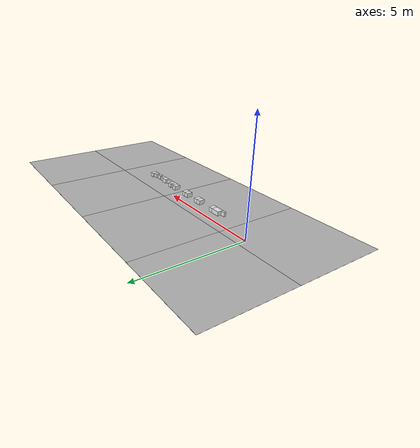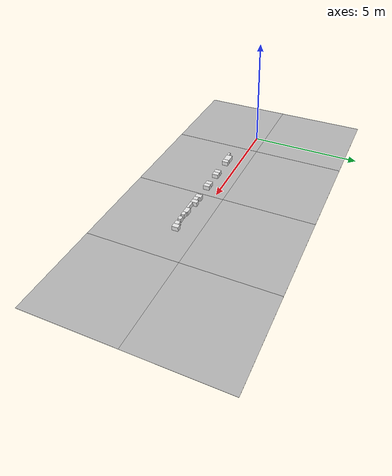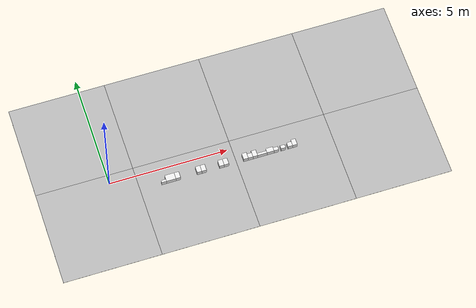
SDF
<sdf version='1.6'><world name='default'>
    <light name='sun_light' type='directional'>
      <pose frame=''>0 0 10 0 -0 0</pose>
      <diffuse>0.5 0.5 0.5 1</diffuse>
      <specular>0.1 0.1 0.1 1</specular>
      <direction>0.1 0.1 -0.9</direction>
      <attenuation>
        <range>20</range>
        <constant>0.5</constant>
        <linear>0.01</linear>
        <quadratic>0.001</quadratic>
      </attenuation>
      <cast_shadows>1</cast_shadows>
    </light>

    <model name='Tile/0-0'>
      <static>1</static>
      <link name='link'>
        <collision name='collision'>
          <geometry>
            <plane>
              <normal>0 0 1</normal>
              <size>4.096 4.096</size>
            </plane>
          </geometry>
          <surface>
            <friction>
              <ode>
                <mu>100</mu>
                <mu2>50</mu2>
              </ode>
              <torsional>
                <ode/>
              </torsional>
            </friction>
            <contact>
              <ode/>
            </contact>
            <bounce/>
          </surface>
          <max_contacts>10</max_contacts>
        </collision>
        <visual name='visual'>
          <cast_shadows>0</cast_shadows>
          <geometry>
            <plane>
              <normal>0 0 1</normal>
              <size>4.096 4.096</size>
            </plane>
          </geometry>
          <material>
            <script>
              <uri>file://materials/scripts</uri>
              <uri>file://materials/textures</uri>
              <name>Tile/aa44efc093d15b0d016b671cb8dad8b9b5925cd42bc6b331ef31decf4ba6863e</name>
            </script>
          </material>
        </visual>
        <self_collide>0</self_collide>
        <enable_wind>0</enable_wind>
        <kinematic>0</kinematic>
      </link>
      <pose frame=''>-0.952 -1.6520000000000001 0 0 -0 0</pose>
    </model>

    <model name='Tile/0-1'>
      <static>1</static>
      <link name='link'>
        <collision name='collision'>
          <geometry>
            <plane>
              <normal>0 0 1</normal>
              <size>4.096 4.096</size>
            </plane>
          </geometry>
          <surface>
            <friction>
              <ode>
                <mu>100</mu>
                <mu2>50</mu2>
              </ode>
              <torsional>
                <ode/>
              </torsional>
            </friction>
            <contact>
              <ode/>
            </contact>
            <bounce/>
          </surface>
          <max_contacts>10</max_contacts>
        </collision>
        <visual name='visual'>
          <cast_shadows>0</cast_shadows>
          <geometry>
            <plane>
              <normal>0 0 1</normal>
              <size>4.096 4.096</size>
            </plane>
          </geometry>
          <material>
            <script>
              <uri>file://materials/scripts</uri>
              <uri>file://materials/textures</uri>
              <name>Tile/6681b896b1587d54cb69aadeb5fb7247b4d6d500490292053e67105ac88ca889</name>
            </script>
          </material>
        </visual>
        <self_collide>0</self_collide>
        <enable_wind>0</enable_wind>
        <kinematic>0</kinematic>
      </link>
      <pose frame=''>-0.952 2.444 0 0 -0 0</pose>
    </model>

    <model name='Tile/1-0'>
      <static>1</static>
      <link name='link'>
        <collision name='collision'>
          <geometry>
            <plane>
              <normal>0 0 1</normal>
              <size>4.096 4.096</size>
            </plane>
          </geometry>
          <surface>
            <friction>
              <ode>
                <mu>100</mu>
                <mu2>50</mu2>
              </ode>
              <torsional>
                <ode/>
              </torsional>
            </friction>
            <contact>
              <ode/>
            </contact>
            <bounce/>
          </surface>
          <max_contacts>10</max_contacts>
        </collision>
        <visual name='visual'>
          <cast_shadows>0</cast_shadows>
          <geometry>
            <plane>
              <normal>0 0 1</normal>
              <size>4.096 4.096</size>
            </plane>
          </geometry>
          <material>
            <script>
              <uri>file://materials/scripts</uri>
              <uri>file://materials/textures</uri>
              <name>Tile/0b59dbaa9e8ae4f5eb1b79b78fa104c8d2a6a26061e4e7915708ede31bf20709</name>
            </script>
          </material>
        </visual>
        <self_collide>0</self_collide>
        <enable_wind>0</enable_wind>
        <kinematic>0</kinematic>
      </link>
      <pose frame=''>3.144 -1.6520000000000001 0 0 -0 0</pose>
    </model>

    <model name='Tile/1-1'>
      <static>1</static>
      <link name='link'>
        <collision name='collision'>
          <geometry>
            <plane>
              <normal>0 0 1</normal>
              <size>4.096 4.096</size>
            </plane>
          </geometry>
          <surface>
            <friction>
              <ode>
                <mu>100</mu>
                <mu2>50</mu2>
              </ode>
              <torsional>
                <ode/>
              </torsional>
            </friction>
            <contact>
              <ode/>
            </contact>
            <bounce/>
          </surface>
          <max_contacts>10</max_contacts>
        </collision>
        <visual name='visual'>
          <cast_shadows>0</cast_shadows>
          <geometry>
            <plane>
              <normal>0 0 1</normal>
              <size>4.096 4.096</size>
            </plane>
          </geometry>
          <material>
            <script>
              <uri>file://materials/scripts</uri>
              <uri>file://materials/textures</uri>
              <name>Tile/13957a6de1f2afce18d7f1f64dacc2f21295e26ccf498256b0e1a51002cd5706</name>
            </script>
          </material>
        </visual>
        <self_collide>0</self_collide>
        <enable_wind>0</enable_wind>
        <kinematic>0</kinematic>
      </link>
      <pose frame=''>3.144 2.444 0 0 -0 0</pose>
    </model>

    <model name='Tile/2-0'>
      <static>1</static>
      <link name='link'>
        <collision name='collision'>
          <geometry>
            <plane>
              <normal>0 0 1</normal>
              <size>4.096 4.096</size>
            </plane>
          </geometry>
          <surface>
            <friction>
              <ode>
                <mu>100</mu>
                <mu2>50</mu2>
              </ode>
              <torsional>
                <ode/>
              </torsional>
            </friction>
            <contact>
              <ode/>
            </contact>
            <bounce/>
          </surface>
          <max_contacts>10</max_contacts>
        </collision>
        <visual name='visual'>
          <cast_shadows>0</cast_shadows>
          <geometry>
            <plane>
              <normal>0 0 1</normal>
              <size>4.096 4.096</size>
            </plane>
          </geometry>
          <material>
            <script>
              <uri>file://materials/scripts</uri>
              <uri>file://materials/textures</uri>
              <name>Tile/22baf5f3ee060d38436058f682f7a11e62c8beb498d32f9c98170d0a02d47414</name>
            </script>
          </material>
        </visual>
        <self_collide>0</self_collide>
        <enable_wind>0</enable_wind>
        <kinematic>0</kinematic>
      </link>
      <pose frame=''>7.24 -1.6520000000000001 0 0 -0 0</pose>
    </model>

    <model name='Tile/2-1'>
      <static>1</static>
      <link name='link'>
        <collision name='collision'>
          <geometry>
            <plane>
              <normal>0 0 1</normal>
              <size>4.096 4.096</size>
            </plane>
          </geometry>
          <surface>
            <friction>
              <ode>
                <mu>100</mu>
                <mu2>50</mu2>
              </ode>
              <torsional>
                <ode/>
              </torsional>
            </friction>
            <contact>
              <ode/>
            </contact>
            <bounce/>
          </surface>
          <max_contacts>10</max_contacts>
        </collision>
        <visual name='visual'>
          <cast_shadows>0</cast_shadows>
          <geometry>
            <plane>
              <normal>0 0 1</normal>
              <size>4.096 4.096</size>
            </plane>
          </geometry>
          <material>
            <script>
              <uri>file://materials/scripts</uri>
              <uri>file://materials/textures</uri>
              <name>Tile/13957a6de1f2afce18d7f1f64dacc2f21295e26ccf498256b0e1a51002cd5706</name>
            </script>
          </material>
        </visual>
        <self_collide>0</self_collide>
        <enable_wind>0</enable_wind>
        <kinematic>0</kinematic>
      </link>
      <pose frame=''>7.24 2.444 0 0 -0 0</pose>
    </model>

    <model name='Tile/3-0'>
      <static>1</static>
      <link name='link'>
        <collision name='collision'>
          <geometry>
            <plane>
              <normal>0 0 1</normal>
              <size>4.096 4.096</size>
            </plane>
          </geometry>
          <surface>
            <friction>
              <ode>
                <mu>100</mu>
                <mu2>50</mu2>
              </ode>
              <torsional>
                <ode/>
              </torsional>
            </friction>
            <contact>
              <ode/>
            </contact>
            <bounce/>
          </surface>
          <max_contacts>10</max_contacts>
        </collision>
        <visual name='visual'>
          <cast_shadows>0</cast_shadows>
          <geometry>
            <plane>
              <normal>0 0 1</normal>
              <size>4.096 4.096</size>
            </plane>
          </geometry>
          <material>
            <script>
              <uri>file://materials/scripts</uri>
              <uri>file://materials/textures</uri>
              <name>Tile/797911407ca688e3e5a0a42224ebf6544feb2ba2772e441f77009db3be470ff3</name>
            </script>
          </material>
        </visual>
        <self_collide>0</self_collide>
        <enable_wind>0</enable_wind>
        <kinematic>0</kinematic>
      </link>
      <pose frame=''>11.336 -1.6520000000000001 0 0 -0 0</pose>
    </model>

    <model name='Tile/3-1'>
      <static>1</static>
      <link name='link'>
        <collision name='collision'>
          <geometry>
            <plane>
              <normal>0 0 1</normal>
              <size>4.096 4.096</size>
            </plane>
          </geometry>
          <surface>
            <friction>
              <ode>
                <mu>100</mu>
                <mu2>50</mu2>
              </ode>
              <torsional>
                <ode/>
              </torsional>
            </friction>
            <contact>
              <ode/>
            </contact>
            <bounce/>
          </surface>
          <max_contacts>10</max_contacts>
        </collision>
        <visual name='visual'>
          <cast_shadows>0</cast_shadows>
          <geometry>
            <plane>
              <normal>0 0 1</normal>
              <size>4.096 4.096</size>
            </plane>
          </geometry>
          <material>
            <script>
              <uri>file://materials/scripts</uri>
              <uri>file://materials/textures</uri>
              <name>Tile/937f72079d740610ebca5448f7e03d56b2b4bb146396f5b5899ed1bdbd7dfab3</name>
            </script>
          </material>
        </visual>
        <self_collide>0</self_collide>
        <enable_wind>0</enable_wind>
        <kinematic>0</kinematic>
      </link>
      <pose frame=''>11.336 2.444 0 0 -0 0</pose>
    </model>

    <model name='Obstacle/-5/0'>
      <pose frame=''>2.1 -0.6499999999999999 0.1 0 0 -0.0</pose>
      <link name='link'>
        <inertial>
          <mass>10</mass>
          <inertia>
            <ixx>0.166667</ixx>
            <ixy>0</ixy>
            <ixz>0</ixz>
            <iyy>0.166667</iyy>
            <iyz>0</iyz>
            <izz>0.166667</izz>
          </inertia>
        </inertial>
        <collision name='collision'>
          <geometry>
            <box>
              <size>0.2 0.1 0.2</size>
            </box>
          </geometry>
          <max_contacts>10</max_contacts>
          <surface>
            <contact>
              <ode/>
            </contact>
            <bounce/>
            <friction>
              <torsional>
                <ode/>
              </torsional>
              <ode/>
            </friction>
          </surface>
        </collision>
        <visual name='visual'>
          <geometry>
            <box>
              <size>0.2 0.1 0.2</size>
            </box>
          </geometry>
          <material>
            <script>
              <name>Gazebo/White</name>
              <uri>file://media/materials/scripts/gazebo.material</uri>
            </script>
          </material>
        </visual>
        <self_collide>0</self_collide>
        <enable_wind>0</enable_wind>
        <kinematic>0</kinematic>
      </link>
    </model>

    <model name='Obstacle/-9/0'>
      <pose frame=''>2.4000000000000004 -0.5599999999999999 0.1 0 0 -0.0</pose>
      <link name='link'>
        <inertial>
          <mass>10</mass>
          <inertia>
            <ixx>0.166667</ixx>
            <ixy>0</ixy>
            <ixz>0</ixz>
            <iyy>0.166667</iyy>
            <iyz>0</iyz>
            <izz>0.166667</izz>
          </inertia>
        </inertial>
        <collision name='collision'>
          <geometry>
            <box>
              <size>0.4 0.28 0.2</size>
            </box>
          </geometry>
          <max_contacts>10</max_contacts>
          <surface>
            <contact>
              <ode/>
            </contact>
            <bounce/>
            <friction>
              <torsional>
                <ode/>
              </torsional>
              <ode/>
            </friction>
          </surface>
        </collision>
        <visual name='visual'>
          <geometry>
            <box>
              <size>0.4 0.28 0.2</size>
            </box>
          </geometry>
          <material>
            <script>
              <name>Gazebo/White</name>
              <uri>file://media/materials/scripts/gazebo.material</uri>
            </script>
          </material>
        </visual>
        <self_collide>0</self_collide>
        <enable_wind>0</enable_wind>
        <kinematic>0</kinematic>
      </link>
    </model>

    <model name='Obstacle/-13/0'>
      <pose frame=''>2.7 -0.5599999999999999 0.1 0 0 -0.0</pose>
      <link name='link'>
        <inertial>
          <mass>10</mass>
          <inertia>
            <ixx>0.166667</ixx>
            <ixy>0</ixy>
            <ixz>0</ixz>
            <iyy>0.166667</iyy>
            <iyz>0</iyz>
            <izz>0.166667</izz>
          </inertia>
        </inertial>
        <collision name='collision'>
          <geometry>
            <box>
              <size>0.2 0.28 0.2</size>
            </box>
          </geometry>
          <max_contacts>10</max_contacts>
          <surface>
            <contact>
              <ode/>
            </contact>
            <bounce/>
            <friction>
              <torsional>
                <ode/>
              </torsional>
              <ode/>
            </friction>
          </surface>
        </collision>
        <visual name='visual'>
          <geometry>
            <box>
              <size>0.2 0.28 0.2</size>
            </box>
          </geometry>
          <material>
            <script>
              <name>Gazebo/White</name>
              <uri>file://media/materials/scripts/gazebo.material</uri>
            </script>
          </material>
        </visual>
        <self_collide>0</self_collide>
        <enable_wind>0</enable_wind>
        <kinematic>0</kinematic>
      </link>
    </model>

    <model name='Obstacle/-20/0'>
      <pose frame=''>3.6 -0.5599999999999999 0.1 0 0 -0.0</pose>
      <link name='link'>
        <inertial>
          <mass>10</mass>
          <inertia>
            <ixx>0.166667</ixx>
            <ixy>0</ixy>
            <ixz>0</ixz>
            <iyy>0.166667</iyy>
            <iyz>0</iyz>
            <izz>0.166667</izz>
          </inertia>
        </inertial>
        <collision name='collision'>
          <geometry>
            <box>
              <size>0.2 0.28 0.2</size>
            </box>
          </geometry>
          <max_contacts>10</max_contacts>
          <surface>
            <contact>
              <ode/>
            </contact>
            <bounce/>
            <friction>
              <torsional>
                <ode/>
              </torsional>
              <ode/>
            </friction>
          </surface>
        </collision>
        <visual name='visual'>
          <geometry>
            <box>
              <size>0.2 0.28 0.2</size>
            </box>
          </geometry>
          <material>
            <script>
              <name>Gazebo/White</name>
              <uri>file://media/materials/scripts/gazebo.material</uri>
            </script>
          </material>
        </visual>
        <self_collide>0</self_collide>
        <enable_wind>0</enable_wind>
        <kinematic>0</kinematic>
      </link>
    </model>

    <model name='Obstacle/-24/0'>
      <pose frame=''>3.8000000000000003 -0.5599999999999999 0.1 0 0 -0.0</pose>
      <link name='link'>
        <inertial>
          <mass>10</mass>
          <inertia>
            <ixx>0.166667</ixx>
            <ixy>0</ixy>
            <ixz>0</ixz>
            <iyy>0.166667</iyy>
            <iyz>0</iyz>
            <izz>0.166667</izz>
          </inertia>
        </inertial>
        <collision name='collision'>
          <geometry>
            <box>
              <size>0.2 0.28 0.2</size>
            </box>
          </geometry>
          <max_contacts>10</max_contacts>
          <surface>
            <contact>
              <ode/>
            </contact>
            <bounce/>
            <friction>
              <torsional>
                <ode/>
              </torsional>
              <ode/>
            </friction>
          </surface>
        </collision>
        <visual name='visual'>
          <geometry>
            <box>
              <size>0.2 0.28 0.2</size>
            </box>
          </geometry>
          <material>
            <script>
              <name>Gazebo/White</name>
              <uri>file://media/materials/scripts/gazebo.material</uri>
            </script>
          </material>
        </visual>
        <self_collide>0</self_collide>
        <enable_wind>0</enable_wind>
        <kinematic>0</kinematic>
      </link>
    </model>

    <model name='Obstacle/-31/0'>
      <pose frame=''>4.55 -0.5599999999999999 0.1 0 0 -0.0</pose>
      <link name='link'>
        <inertial>
          <mass>10</mass>
          <inertia>
            <ixx>0.166667</ixx>
            <ixy>0</ixy>
            <ixz>0</ixz>
            <iyy>0.166667</iyy>
            <iyz>0</iyz>
            <izz>0.166667</izz>
          </inertia>
        </inertial>
        <collision name='collision'>
          <geometry>
            <box>
              <size>0.2 0.28 0.2</size>
            </box>
          </geometry>
          <max_contacts>10</max_contacts>
          <surface>
            <contact>
              <ode/>
            </contact>
            <bounce/>
            <friction>
              <torsional>
                <ode/>
              </torsional>
              <ode/>
            </friction>
          </surface>
        </collision>
        <visual name='visual'>
          <geometry>
            <box>
              <size>0.2 0.28 0.2</size>
            </box>
          </geometry>
          <material>
            <script>
              <name>Gazebo/White</name>
              <uri>file://media/materials/scripts/gazebo.material</uri>
            </script>
          </material>
        </visual>
        <self_collide>0</self_collide>
        <enable_wind>0</enable_wind>
        <kinematic>0</kinematic>
      </link>
    </model>

    <model name='Obstacle/-35/0'>
      <pose frame=''>4.75 -0.5599999999999999 0.1 0 0 -0.0</pose>
      <link name='link'>
        <inertial>
          <mass>10</mass>
          <inertia>
            <ixx>0.166667</ixx>
            <ixy>0</ixy>
            <ixz>0</ixz>
            <iyy>0.166667</iyy>
            <iyz>0</iyz>
            <izz>0.166667</izz>
          </inertia>
        </inertial>
        <collision name='collision'>
          <geometry>
            <box>
              <size>0.2 0.28 0.2</size>
            </box>
          </geometry>
          <max_contacts>10</max_contacts>
          <surface>
            <contact>
              <ode/>
            </contact>
            <bounce/>
            <friction>
              <torsional>
                <ode/>
              </torsional>
              <ode/>
            </friction>
          </surface>
        </collision>
        <visual name='visual'>
          <geometry>
            <box>
              <size>0.2 0.28 0.2</size>
            </box>
          </geometry>
          <material>
            <script>
              <name>Gazebo/White</name>
              <uri>file://media/materials/scripts/gazebo.material</uri>
            </script>
          </material>
        </visual>
        <self_collide>0</self_collide>
        <enable_wind>0</enable_wind>
        <kinematic>0</kinematic>
      </link>
    </model>

    <model name='Obstacle/-42/0'>
      <pose frame=''>5.58 -0.5599999999999999 0.1 0 0 -0.0</pose>
      <link name='link'>
        <inertial>
          <mass>10</mass>
          <inertia>
            <ixx>0.166667</ixx>
            <ixy>0</ixy>
            <ixz>0</ixz>
            <iyy>0.166667</iyy>
            <iyz>0</iyz>
            <izz>0.166667</izz>
          </inertia>
        </inertial>
        <collision name='collision'>
          <geometry>
            <box>
              <size>0.2 0.28 0.2</size>
            </box>
          </geometry>
          <max_contacts>10</max_contacts>
          <surface>
            <contact>
              <ode/>
            </contact>
            <bounce/>
            <friction>
              <torsional>
                <ode/>
              </torsional>
              <ode/>
            </friction>
          </surface>
        </collision>
        <visual name='visual'>
          <geometry>
            <box>
              <size>0.2 0.28 0.2</size>
            </box>
          </geometry>
          <material>
            <script>
              <name>Gazebo/White</name>
              <uri>file://media/materials/scripts/gazebo.material</uri>
            </script>
          </material>
        </visual>
        <self_collide>0</self_collide>
        <enable_wind>0</enable_wind>
        <kinematic>0</kinematic>
      </link>
    </model>

    <model name='Obstacle/-46/0'>
      <pose frame=''>5.78 -0.6 0.1 0 0 -0.0</pose>
      <link name='link'>
        <inertial>
          <mass>10</mass>
          <inertia>
            <ixx>0.166667</ixx>
            <ixy>0</ixy>
            <ixz>0</ixz>
            <iyy>0.166667</iyy>
            <iyz>0</iyz>
            <izz>0.166667</izz>
          </inertia>
        </inertial>
        <collision name='collision'>
          <geometry>
            <box>
              <size>0.2 0.2 0.2</size>
            </box>
          </geometry>
          <max_contacts>10</max_contacts>
          <surface>
            <contact>
              <ode/>
            </contact>
            <bounce/>
            <friction>
              <torsional>
                <ode/>
              </torsional>
              <ode/>
            </friction>
          </surface>
        </collision>
        <visual name='visual'>
          <geometry>
            <box>
              <size>0.2 0.2 0.2</size>
            </box>
          </geometry>
          <material>
            <script>
              <name>Gazebo/White</name>
              <uri>file://media/materials/scripts/gazebo.material</uri>
            </script>
          </material>
        </visual>
        <self_collide>0</self_collide>
        <enable_wind>0</enable_wind>
        <kinematic>0</kinematic>
      </link>
    </model>

    <model name='Obstacle/-50/0'>
      <pose frame=''>5.98 -0.5599999999999999 0.1 0 0 -0.0</pose>
      <link name='link'>
        <inertial>
          <mass>10</mass>
          <inertia>
            <ixx>0.166667</ixx>
            <ixy>0</ixy>
            <ixz>0</ixz>
            <iyy>0.166667</iyy>
            <iyz>0</iyz>
            <izz>0.166667</izz>
          </inertia>
        </inertial>
        <collision name='collision'>
          <geometry>
            <box>
              <size>0.2 0.28 0.2</size>
            </box>
          </geometry>
          <max_contacts>10</max_contacts>
          <surface>
            <contact>
              <ode/>
            </contact>
            <bounce/>
            <friction>
              <torsional>
                <ode/>
              </torsional>
              <ode/>
            </friction>
          </surface>
        </collision>
        <visual name='visual'>
          <geometry>
            <box>
              <size>0.2 0.28 0.2</size>
            </box>
          </geometry>
          <material>
            <script>
              <name>Gazebo/White</name>
              <uri>file://media/materials/scripts/gazebo.material</uri>
            </script>
          </material>
        </visual>
        <self_collide>0</self_collide>
        <enable_wind>0</enable_wind>
        <kinematic>0</kinematic>
      </link>
    </model>

    <model name='Obstacle/-54/0'>
      <pose frame=''>6.280000000000001 -0.6499999999999999 0.1 0 0 -0.0</pose>
      <link name='link'>
        <inertial>
          <mass>10</mass>
          <inertia>
            <ixx>0.166667</ixx>
            <ixy>0</ixy>
            <ixz>0</ixz>
            <iyy>0.166667</iyy>
            <iyz>0</iyz>
            <izz>0.166667</izz>
          </inertia>
        </inertial>
        <collision name='collision'>
          <geometry>
            <box>
              <size>0.4 0.1 0.2</size>
            </box>
          </geometry>
          <max_contacts>10</max_contacts>
          <surface>
            <contact>
              <ode/>
            </contact>
            <bounce/>
            <friction>
              <torsional>
                <ode/>
              </torsional>
              <ode/>
            </friction>
          </surface>
        </collision>
        <visual name='visual'>
          <geometry>
            <box>
              <size>0.4 0.1 0.2</size>
            </box>
          </geometry>
          <material>
            <script>
              <name>Gazebo/White</name>
              <uri>file://media/materials/scripts/gazebo.material</uri>
            </script>
          </material>
        </visual>
        <self_collide>0</self_collide>
        <enable_wind>0</enable_wind>
        <kinematic>0</kinematic>
      </link>
    </model>

    <model name='Obstacle/-58/0'>
      <pose frame=''>6.630000000000002 -0.6 0.1 0 0 -0.0</pose>
      <link name='link'>
        <inertial>
          <mass>10</mass>
          <inertia>
            <ixx>0.166667</ixx>
            <ixy>0</ixy>
            <ixz>0</ixz>
            <iyy>0.166667</iyy>
            <iyz>0</iyz>
            <izz>0.166667</izz>
          </inertia>
        </inertial>
        <collision name='collision'>
          <geometry>
            <box>
              <size>0.3 0.2 0.2</size>
            </box>
          </geometry>
          <max_contacts>10</max_contacts>
          <surface>
            <contact>
              <ode/>
            </contact>
            <bounce/>
            <friction>
              <torsional>
                <ode/>
              </torsional>
              <ode/>
            </friction>
          </surface>
        </collision>
        <visual name='visual'>
          <geometry>
            <box>
              <size>0.3 0.2 0.2</size>
            </box>
          </geometry>
          <material>
            <script>
              <name>Gazebo/White</name>
              <uri>file://media/materials/scripts/gazebo.material</uri>
            </script>
          </material>
        </visual>
        <self_collide>0</self_collide>
        <enable_wind>0</enable_wind>
        <kinematic>0</kinematic>
      </link>
    </model>

    <model name='Obstacle/-62/0'>
      <pose frame=''>6.880000000000001 -0.625 0.1 0 0 -0.0</pose>
      <link name='link'>
        <inertial>
          <mass>10</mass>
          <inertia>
            <ixx>0.166667</ixx>
            <ixy>0</ixy>
            <ixz>0</ixz>
            <iyy>0.166667</iyy>
            <iyz>0</iyz>
            <izz>0.166667</izz>
          </inertia>
        </inertial>
        <collision name='collision'>
          <geometry>
            <box>
              <size>0.2 0.15 0.2</size>
            </box>
          </geometry>
          <max_contacts>10</max_contacts>
          <surface>
            <contact>
              <ode/>
            </contact>
            <bounce/>
            <friction>
              <torsional>
                <ode/>
              </torsional>
              <ode/>
            </friction>
          </surface>
        </collision>
        <visual name='visual'>
          <geometry>
            <box>
              <size>0.2 0.15 0.2</size>
            </box>
          </geometry>
          <material>
            <script>
              <name>Gazebo/White</name>
              <uri>file://media/materials/scripts/gazebo.material</uri>
            </script>
          </material>
        </visual>
        <self_collide>0</self_collide>
        <enable_wind>0</enable_wind>
        <kinematic>0</kinematic>
      </link>
    </model>

    <model name='Obstacle/-69/0'>
      <pose frame=''>7.180000000000001 -0.625 0.1 0 0 -0.0</pose>
      <link name='link'>
        <inertial>
          <mass>10</mass>
          <inertia>
            <ixx>0.166667</ixx>
            <ixy>0</ixy>
            <ixz>0</ixz>
            <iyy>0.166667</iyy>
            <iyz>0</iyz>
            <izz>0.166667</izz>
          </inertia>
        </inertial>
        <collision name='collision'>
          <geometry>
            <box>
              <size>0.2 0.15 0.2</size>
            </box>
          </geometry>
          <max_contacts>10</max_contacts>
          <surface>
            <contact>
              <ode/>
            </contact>
            <bounce/>
            <friction>
              <torsional>
                <ode/>
              </torsional>
              <ode/>
            </friction>
          </surface>
        </collision>
        <visual name='visual'>
          <geometry>
            <box>
              <size>0.2 0.15 0.2</size>
            </box>
          </geometry>
          <material>
            <script>
              <name>Gazebo/White</name>
              <uri>file://media/materials/scripts/gazebo.material</uri>
            </script>
          </material>
        </visual>
        <self_collide>0</self_collide>
        <enable_wind>0</enable_wind>
        <kinematic>0</kinematic>
      </link>
    </model>

    <model name='Obstacle/-76/0'>
      <pose frame=''>7.48 -0.6 0.1 0 0 -0.0</pose>
      <link name='link'>
        <inertial>
          <mass>10</mass>
          <inertia>
            <ixx>0.166667</ixx>
            <ixy>0</ixy>
            <ixz>0</ixz>
            <iyy>0.166667</iyy>
            <iyz>0</iyz>
            <izz>0.166667</izz>
          </inertia>
        </inertial>
        <collision name='collision'>
          <geometry>
            <box>
              <size>0.2 0.2 0.2</size>
            </box>
          </geometry>
          <max_contacts>10</max_contacts>
          <surface>
            <contact>
              <ode/>
            </contact>
            <bounce/>
            <friction>
              <torsional>
                <ode/>
              </torsional>
              <ode/>
            </friction>
          </surface>
        </collision>
        <visual name='visual'>
          <geometry>
            <box>
              <size>0.2 0.2 0.2</size>
            </box>
          </geometry>
          <material>
            <script>
              <name>Gazebo/White</name>
              <uri>file://media/materials/scripts/gazebo.material</uri>
            </script>
          </material>
        </visual>
        <self_collide>0</self_collide>
        <enable_wind>0</enable_wind>
        <kinematic>0</kinematic>
      </link>
    </model>

    <model name='Obstacle/-80/0'>
      <pose frame=''>7.680000000000001 -0.5599999999999999 0.1 0 0 -0.0</pose>
      <link name='link'>
        <inertial>
          <mass>10</mass>
          <inertia>
            <ixx>0.166667</ixx>
            <ixy>0</ixy>
            <ixz>0</ixz>
            <iyy>0.166667</iyy>
            <iyz>0</iyz>
            <izz>0.166667</izz>
          </inertia>
        </inertial>
        <collision name='collision'>
          <geometry>
            <box>
              <size>0.2 0.28 0.2</size>
            </box>
          </geometry>
          <max_contacts>10</max_contacts>
          <surface>
            <contact>
              <ode/>
            </contact>
            <bounce/>
            <friction>
              <torsional>
                <ode/>
              </torsional>
              <ode/>
            </friction>
          </surface>
        </collision>
        <visual name='visual'>
          <geometry>
            <box>
              <size>0.2 0.28 0.2</size>
            </box>
          </geometry>
          <material>
            <script>
              <name>Gazebo/White</name>
              <uri>file://media/materials/scripts/gazebo.material</uri>
            </script>
          </material>
        </visual>
        <self_collide>0</self_collide>
        <enable_wind>0</enable_wind>
        <kinematic>0</kinematic>
      </link>
    </model>
    </world></sdf>
